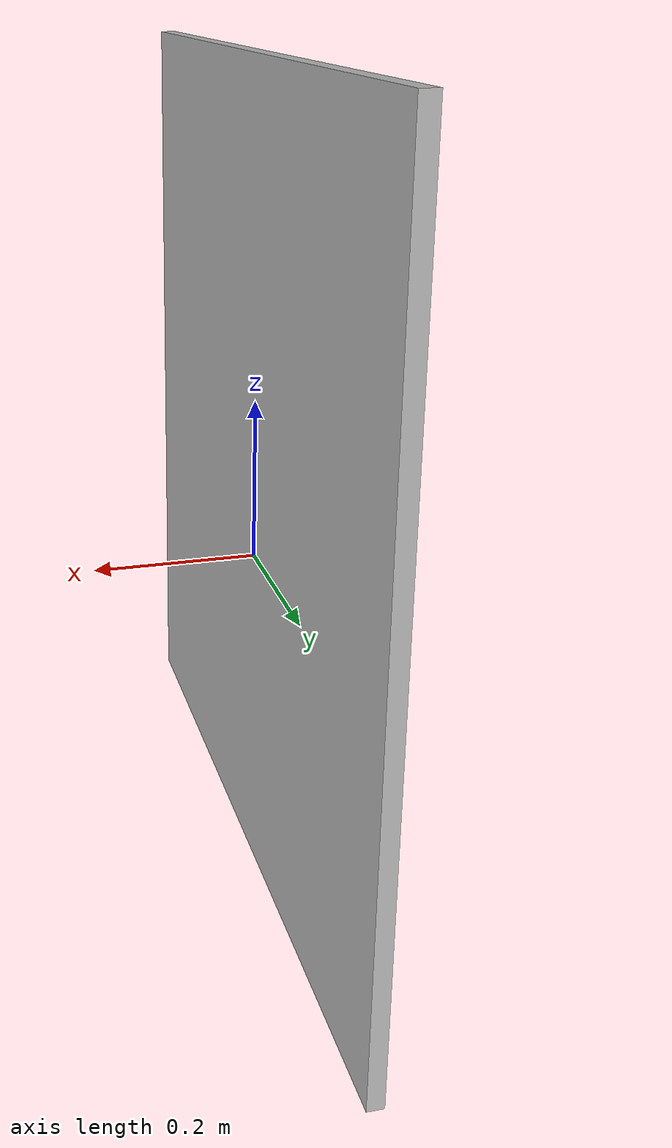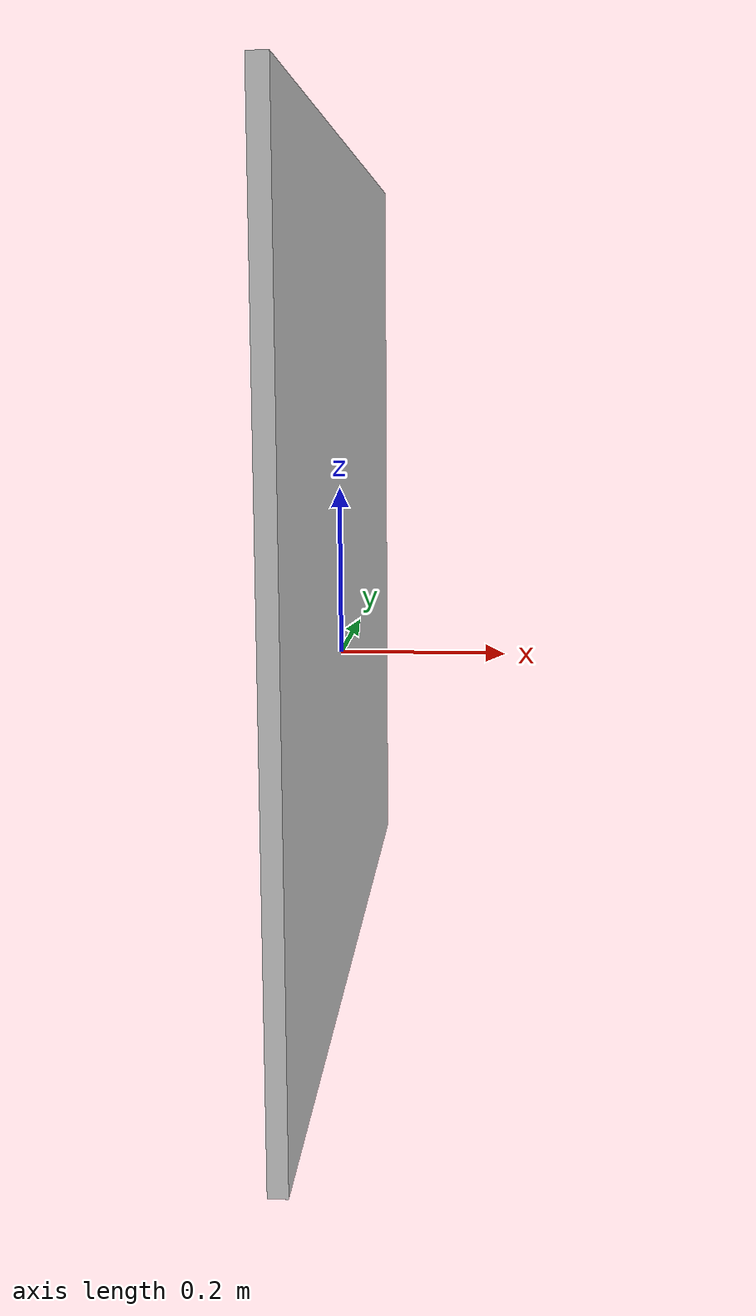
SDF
<?xml version="1.0"?>
<sdf version="1.6">
  <model name="trash_sign_03">
    <static>true</static>
    <link name="sign">
      <visual name="visual">
        <pose>0 0 0.1 0 0 0</pose>
        <geometry>
          <box>
            <size>0.02 1 1</size>
          </box>
        </geometry>
        <material>
          <script>
            <uri>model://photo_signs/trash_sign_03/materials/scripts</uri>
            <uri>model://photo_signs/trash_sign_03/materials/textures</uri>
            <name>PhotoSign/trash_sign_03</name>
          </script>
        </material>
      </visual>
    </link>
  </model>
</sdf>
